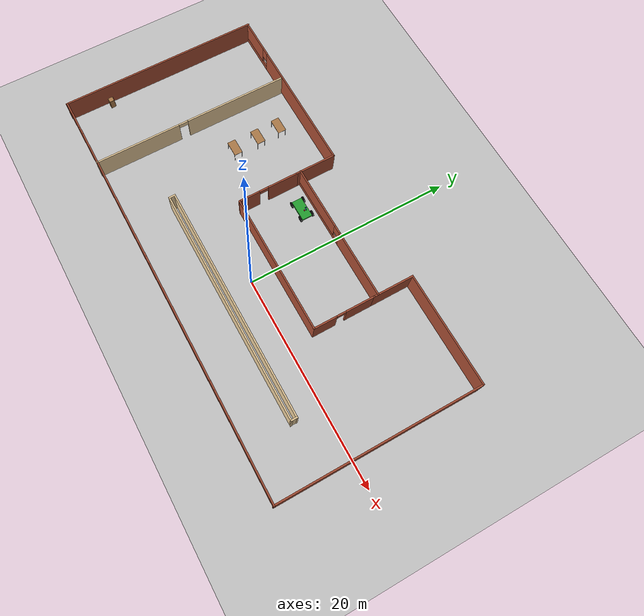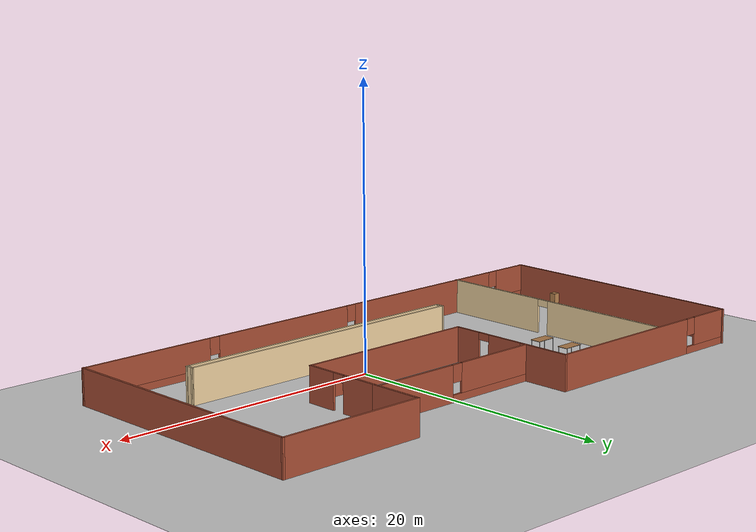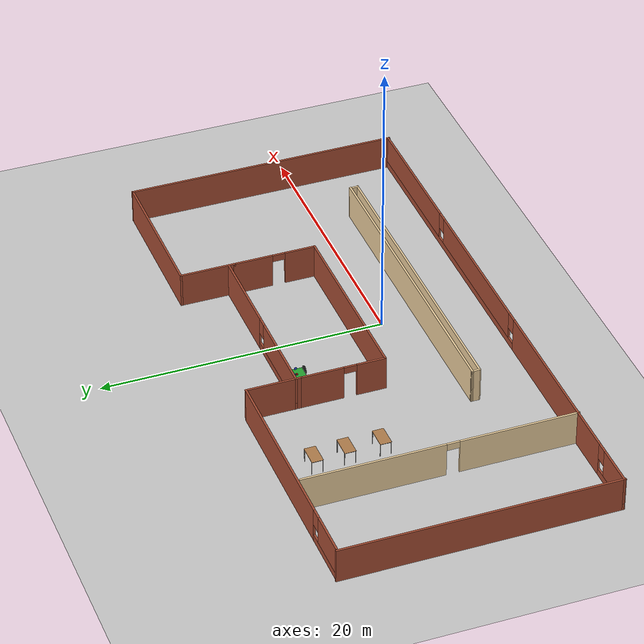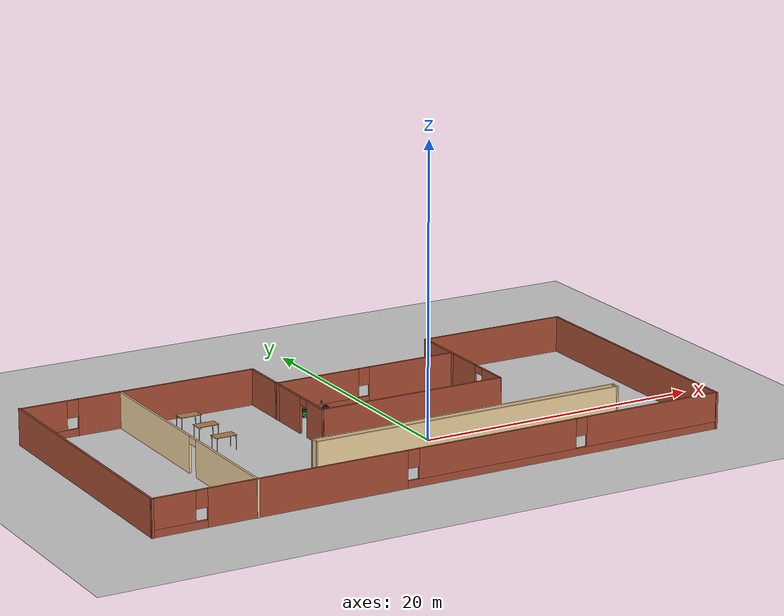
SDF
<sdf version="1.6">
 <world name="default">
  <model name="ground_plane">
   <static>1</static>
   <link name="link">
    <collision name="collision">
     <geometry><plane><normal>0 0 1</normal><size>100 100</size></plane></geometry>
     <surface>
      <contact><collide_bitmask>65535</collide_bitmask></contact>
      <friction><ode><mu>100</mu><mu2>50</mu2></ode></friction>
     </surface>
    </collision>
    <visual name="visual">
     <cast_shadows>0</cast_shadows>
     <geometry><plane><normal>0 0 1</normal><size>100 100</size></plane></geometry>
     <material>
      <script><uri>file://media/materials/scripts/gazebo.material</uri><name>Gazebo/Grey</name></script>
     </material>
    </visual>
   </link>
  </model>
  <model name="world">
   <pose>-2.9063 2.36558 0 0 -0 0</pose>
   <link name="Wall_0">
    <pose>-13.2644 -0.09855 0 0 0 -1.5708</pose>
    <visual name="Wall_0_Visual_0">
     <pose>-4.63352 0 1.25 0 -0 0</pose>
     <geometry><box><size>9.98296 0.15 2.5</size></box></geometry>
     <material>
      <script><uri>file://media/materials/scripts/gazebo.material</uri><name>Gazebo/Grey</name></script>
      <ambient>0.921569 0.807843 0.615686 1</ambient>
     </material>
     <meta><layer>0</layer></meta>
    </visual>
    <collision name="Wall_0_Collision_0">
     <geometry><box><size>9.98296 0.15 2.5</size></box></geometry>
     <pose>-4.63352 0 1.25 0 -0 0</pose>
    </collision>
    <visual name="Wall_0_Visual_1">
     <pose>5.44148 0 1.25 0 -0 0</pose>
     <geometry><box><size>8.36704 0.15 2.5</size></box></geometry>
     <material>
      <script><uri>file://media/materials/scripts/gazebo.material</uri><name>Gazebo/Grey</name></script>
      <ambient>0.921569 0.807843 0.615686 1</ambient>
     </material>
     <meta><layer>0</layer></meta>
    </visual>
    <collision name="Wall_0_Collision_1">
     <geometry><box><size>8.36704 0.15 2.5</size></box></geometry>
     <pose>5.44148 0 1.25 0 -0 0</pose>
    </collision>
    <visual name="Wall_0_Visual_2">
     <pose>0.807957 0 2.25 0 -0 0</pose>
     <geometry><box><size>0.9 0.15 0.5</size></box></geometry>
     <material>
      <script><uri>file://media/materials/scripts/gazebo.material</uri><name>Gazebo/Grey</name></script>
      <ambient>0.921569 0.807843 0.615686 1</ambient>
     </material>
     <meta><layer>0</layer></meta>
    </visual>
    <collision name="Wall_0_Collision_2">
     <geometry><box><size>0.9 0.15 0.5</size></box></geometry>
     <pose>0.807957 0 2.25 0 -0 0</pose>
    </collision>
   </link>
   <link name="Wall_1">
    <pose>3.54984 -9.62225 0 0 0 -0.001564</pose>
    <visual name="Wall_1_Visual_0">
     <pose>-11.619 0 1.25 0 -0 0</pose>
     <geometry><box><size>10.5411 0.15 2.5</size></box></geometry>
     <material>
      <script><uri>file://media/materials/scripts/gazebo.material</uri><name>Gazebo/Bricks</name></script>
      <ambient>1 1 1 1</ambient>
     </material>
     <meta><layer>0</layer></meta>
    </visual>
    <collision name="Wall_1_Collision_0">
     <geometry><box><size>10.5411 0.15 2.5</size></box></geometry>
     <pose>-11.619 0 1.25 0 -0 0</pose>
    </collision>
    <visual name="Wall_1_Visual_1">
     <pose>5.27055 0 0.25 0 -0 0</pose>
     <geometry><box><size>23.238 0.15 0.5</size></box></geometry>
     <material>
      <script><uri>file://media/materials/scripts/gazebo.material</uri><name>Gazebo/Bricks</name></script>
      <ambient>1 1 1 1</ambient>
     </material>
     <meta><layer>0</layer></meta>
    </visual>
    <collision name="Wall_1_Collision_1">
     <geometry><box><size>23.238 0.15 0.5</size></box></geometry>
     <pose>5.27055 0 0.25 0 -0 0</pose>
    </collision>
    <visual name="Wall_1_Visual_2">
     <pose>0.223423 0 1.5 0 -0 0</pose>
     <geometry><box><size>11.5437 0.15 2</size></box></geometry>
     <material>
      <script><uri>file://media/materials/scripts/gazebo.material</uri><name>Gazebo/Bricks</name></script>
      <ambient>1 1 1 1</ambient>
     </material>
     <meta><layer>0</layer></meta>
    </visual>
    <collision name="Wall_1_Collision_2">
     <geometry><box><size>11.5437 0.15 2</size></box></geometry>
     <pose>0.223423 0 1.5 0 -0 0</pose>
    </collision>
    <visual name="Wall_1_Visual_3">
     <pose>11.8424 0 1.5 0 -0 0</pose>
     <geometry><box><size>10.0943 0.15 2</size></box></geometry>
     <material>
      <script><uri>file://media/materials/scripts/gazebo.material</uri><name>Gazebo/Bricks</name></script>
      <ambient>1 1 1 1</ambient>
     </material>
     <meta><layer>0</layer></meta>
    </visual>
    <collision name="Wall_1_Collision_3">
     <geometry><box><size>10.0943 0.15 2</size></box></geometry>
     <pose>11.8424 0 1.5 0 -0 0</pose>
    </collision>
    <visual name="Wall_1_Visual_4">
     <pose>-5.94842 0 1.9 0 -0 0</pose>
     <geometry><box><size>0.8 0.15 1.2</size></box></geometry>
     <material>
      <script><uri>file://media/materials/scripts/gazebo.material</uri><name>Gazebo/Bricks</name></script>
      <ambient>1 1 1 1</ambient>
     </material>
     <meta><layer>0</layer></meta>
    </visual>
    <collision name="Wall_1_Collision_4">
     <geometry><box><size>0.8 0.15 1.2</size></box></geometry>
     <pose>-5.94842 0 1.9 0 -0 0</pose>
    </collision>
    <visual name="Wall_1_Visual_5">
     <pose>6.39527 0 1.9 0 -0 0</pose>
     <geometry><box><size>0.8 0.15 1.2</size></box></geometry>
     <material>
      <script><uri>file://media/materials/scripts/gazebo.material</uri><name>Gazebo/Bricks</name></script>
      <ambient>1 1 1 1</ambient>
     </material>
     <meta><layer>0</layer></meta>
    </visual>
    <collision name="Wall_1_Collision_5">
     <geometry><box><size>0.8 0.15 1.2</size></box></geometry>
     <pose>6.39527 0 1.9 0 -0 0</pose>
    </collision>
   </link>
   <link name="Wall_14">
    <collision name="Wall_14_Collision">
     <geometry><box><size>22.5 0.15 2.5</size></box></geometry>
     <pose>0 0 1.25 0 -0 0</pose>
    </collision>
    <visual name="Wall_14_Visual">
     <pose>0 0 1.25 0 -0 0</pose>
     <geometry><box><size>22.5 0.15 2.5</size></box></geometry>
     <material>
      <script><uri>file://media/materials/scripts/gazebo.material</uri><name>Gazebo/Grey</name></script>
      <ambient>0.921569 0.807843 0.615686 1</ambient>
     </material>
     <meta><layer>0</layer></meta>
    </visual>
    <pose>4.28831 -5.3934 0 0 -0 3.14159</pose>
   </link>
   <link name="Wall_2">
    <collision name="Wall_2_Collision">
     <geometry><box><size>19.5 0.15 2.5</size></box></geometry>
     <pose>0 0 1.25 0 -0 0</pose>
    </collision>
    <visual name="Wall_2_Visual">
     <pose>0 0 1.25 0 -0 0</pose>
     <geometry><box><size>19.5 0.15 2.5</size></box></geometry>
     <material>
      <script><uri>file://media/materials/scripts/gazebo.material</uri><name>Gazebo/Bricks</name></script>
      <ambient>1 1 1 1</ambient>
     </material>
     <meta><layer>0</layer></meta>
    </visual>
    <pose>20.364 -0.02645 0 0 -0 1.5708</pose>
   </link>
   <link name="Wall_43">
    <pose>-16.8144 -9.59595 0 0 -0 3.14159</pose>
    <visual name="Wall_43_Visual_0">
     <pose>-1.88926 0 1.25 0 -0 0</pose>
     <geometry><box><size>3.47166 0.15 2.5</size></box></geometry>
     <material>
      <script><uri>file://media/materials/scripts/gazebo.material</uri><name>Gazebo/Bricks</name></script>
      <ambient>1 1 1 1</ambient>
     </material>
     <meta><layer>0</layer></meta>
    </visual>
    <collision name="Wall_43_Collision_0">
     <geometry><box><size>3.47166 0.15 2.5</size></box></geometry>
     <pose>-1.88926 0 1.25 0 -0 0</pose>
    </collision>
    <visual name="Wall_43_Visual_1">
     <pose>1.73583 0 0.25 0 -0 0</pose>
     <geometry><box><size>3.77853 0.15 0.5</size></box></geometry>
     <material>
      <script><uri>file://media/materials/scripts/gazebo.material</uri><name>Gazebo/Bricks</name></script>
      <ambient>1 1 1 1</ambient>
     </material>
     <meta><layer>0</layer></meta>
    </visual>
    <collision name="Wall_43_Collision_1">
     <geometry><box><size>3.77853 0.15 0.5</size></box></geometry>
     <pose>1.73583 0 0.25 0 -0 0</pose>
    </collision>
    <visual name="Wall_43_Visual_2">
     <pose>2.13583 0 1.5 0 -0 0</pose>
     <geometry><box><size>2.97853 0.15 2</size></box></geometry>
     <material>
      <script><uri>file://media/materials/scripts/gazebo.material</uri><name>Gazebo/Bricks</name></script>
      <ambient>1 1 1 1</ambient>
     </material>
     <meta><layer>0</layer></meta>
    </visual>
    <collision name="Wall_43_Collision_2">
     <geometry><box><size>2.97853 0.15 2</size></box></geometry>
     <pose>2.13583 0 1.5 0 -0 0</pose>
    </collision>
    <visual name="Wall_43_Visual_3">
     <pose>0.246567 0 1.9 0 -0 0</pose>
     <geometry><box><size>0.8 0.15 1.2</size></box></geometry>
     <material>
      <script><uri>file://media/materials/scripts/gazebo.material</uri><name>Gazebo/Bricks</name></script>
      <ambient>1 1 1 1</ambient>
     </material>
     <meta><layer>0</layer></meta>
    </visual>
    <collision name="Wall_43_Collision_3">
     <geometry><box><size>0.8 0.15 1.2</size></box></geometry>
     <pose>0.246567 0 1.9 0 -0 0</pose>
    </collision>
   </link>
   <link name="Wall_44">
    <collision name="Wall_44_Collision">
     <geometry><box><size>19.5 0.15 2.5</size></box></geometry>
     <pose>0 0 1.25 0 -0 0</pose>
    </collision>
    <visual name="Wall_44_Visual">
     <pose>0 0 1.25 0 -0 0</pose>
     <geometry><box><size>19.5 0.15 2.5</size></box></geometry>
     <material>
      <script><uri>file://media/materials/scripts/gazebo.material</uri><name>Gazebo/Bricks</name></script>
      <ambient>1 1 1 1</ambient>
     </material>
     <meta><layer>0</layer></meta>
    </visual>
    <pose>-20.3644 0.02645 0 0 -0 1.5708</pose>
   </link>
   <link name="Wall_49">
    <collision name="Wall_49_Collision">
     <geometry><box><size>0.669425 0.15 2.5</size></box></geometry>
     <pose>0 0 1.25 0 -0 0</pose>
    </collision>
    <visual name="Wall_49_Visual">
     <pose>0 0 1.25 0 -0 0</pose>
     <geometry><box><size>0.669425 0.15 2.5</size></box></geometry>
     <material>
      <script><uri>file://media/materials/scripts/gazebo.material</uri><name>Gazebo/Grey</name></script>
      <ambient>0.921569 0.807843 0.615686 1</ambient>
     </material>
     <meta><layer>0</layer></meta>
    </visual>
    <pose>-6.88893 -5.1337 0 0 -0 1.57943</pose>
   </link>
   <link name="Wall_50">
    <collision name="Wall_50_Collision">
     <geometry><box><size>22.5 0.15 2.5</size></box></geometry>
     <pose>0 0 1.25 0 -0 0</pose>
    </collision>
    <visual name="Wall_50_Visual">
     <pose>0 0 1.25 0 -0 0</pose>
     <geometry><box><size>22.5 0.15 2.5</size></box></geometry>
     <material>
      <script><uri>file://media/materials/scripts/gazebo.material</uri><name>Gazebo/Grey</name></script>
      <ambient>0.921569 0.807843 0.615686 1</ambient>
     </material>
     <meta><layer>0</layer></meta>
    </visual>
    <pose>4.28383 -4.87399 0 0 -0 0</pose>
   </link>
   <link name="Wall_51">
    <collision name="Wall_51_Collision">
     <geometry><box><size>0.669425 0.15 2.5</size></box></geometry>
     <pose>0 0 1.25 0 -0 0</pose>
    </collision>
    <visual name="Wall_51_Visual">
     <pose>0 0 1.25 0 -0 0</pose>
     <geometry><box><size>0.669425 0.15 2.5</size></box></geometry>
     <material>
      <script><uri>file://media/materials/scripts/gazebo.material</uri><name>Gazebo/Grey</name></script>
      <ambient>0.921569 0.807843 0.615686 1</ambient>
     </material>
     <meta><layer>0</layer></meta>
    </visual>
    <pose>15.431 -5.1337 0 0 0 -1.56216</pose>
   </link>
   <link name="Wall_57">
    <collision name="Wall_57_Collision">
     <geometry><box><size>10.75 0.15 2.5</size></box></geometry>
     <pose>0 0 1.25 0 -0 0</pose>
    </collision>
    <visual name="Wall_57_Visual">
     <pose>0 0 1.25 0 -0 0</pose>
     <geometry><box><size>10.75 0.15 2.5</size></box></geometry>
     <material>
      <script><uri>file://media/materials/scripts/gazebo.material</uri><name>Gazebo/Bricks</name></script>
      <ambient>1 1 1 1</ambient>
     </material>
     <meta><layer>0</layer></meta>
    </visual>
    <pose>15.064 9.64855 0 0 -0 3.14159</pose>
   </link>
   <link name="Wall_60">
    <collision name="Wall_60_Collision">
     <geometry><box><size>4 0.15 2.5</size></box></geometry>
     <pose>0 0 1.25 0 -0 0</pose>
    </collision>
    <visual name="Wall_60_Visual">
     <pose>0 0 1.25 0 -0 0</pose>
     <geometry><box><size>4 0.15 2.5</size></box></geometry>
     <material>
      <script><uri>file://media/materials/scripts/gazebo.material</uri><name>Gazebo/Bricks</name></script>
      <ambient>0.921569 0.807843 0.615686 1</ambient>
     </material>
     <meta><layer>0</layer></meta>
    </visual>
    <pose>9.76404 7.72355 0 0 0 -1.5708</pose>
   </link>
   <link name="Wall_62">
    <collision name="Wall_62_Collision">
     <geometry><box><size>4 0.15 2.5</size></box></geometry>
     <pose>0 0 1.25 0 -0 0</pose>
    </collision>
    <visual name="Wall_62_Visual">
     <pose>0 0 1.25 0 -0 0</pose>
     <geometry><box><size>4 0.15 2.5</size></box></geometry>
     <material>
      <script><uri>file://media/materials/scripts/gazebo.material</uri><name>Gazebo/Bricks</name></script>
      <ambient>1 1 1 1</ambient>
     </material>
     <meta><layer>0</layer></meta>
    </visual>
    <pose>-3.58596 7.72355 0 0 -0 1.5708</pose>
   </link>
   <link name="Wall_63">
    <pose>-11.886 9.64855 0 0 -0 3.14159</pose>
    <visual name="Wall_63_Visual_0">
     <pose>-1.97263 0 1.25 0 -0 0</pose>
     <geometry><box><size>12.8047 0.15 2.5</size></box></geometry>
     <material>
      <script><uri>file://media/materials/scripts/gazebo.material</uri><name>Gazebo/Bricks</name></script>
      <ambient>1 1 1 1</ambient>
     </material>
     <meta><layer>0</layer></meta>
    </visual>
    <collision name="Wall_63_Collision_0">
     <geometry><box><size>12.8047 0.15 2.5</size></box></geometry>
     <pose>-1.97263 0 1.25 0 -0 0</pose>
    </collision>
    <visual name="Wall_63_Visual_1">
     <pose>6.40237 0 0.25 0 -0 0</pose>
     <geometry><box><size>3.94526 0.15 0.5</size></box></geometry>
     <material>
      <script><uri>file://media/materials/scripts/gazebo.material</uri><name>Gazebo/Bricks</name></script>
      <ambient>1 1 1 1</ambient>
     </material>
     <meta><layer>0</layer></meta>
    </visual>
    <collision name="Wall_63_Collision_1">
     <geometry><box><size>3.94526 0.15 0.5</size></box></geometry>
     <pose>6.40237 0 0.25 0 -0 0</pose>
    </collision>
    <visual name="Wall_63_Visual_2">
     <pose>6.80237 0 1.5 0 -0 0</pose>
     <geometry><box><size>3.14526 0.15 2</size></box></geometry>
     <material>
      <script><uri>file://media/materials/scripts/gazebo.material</uri><name>Gazebo/Bricks</name></script>
      <ambient>1 1 1 1</ambient>
     </material>
     <meta><layer>0</layer></meta>
    </visual>
    <collision name="Wall_63_Collision_2">
     <geometry><box><size>3.14526 0.15 2</size></box></geometry>
     <pose>6.80237 0 1.5 0 -0 0</pose>
    </collision>
    <visual name="Wall_63_Visual_3">
     <pose>4.82974 0 1.9 0 -0 0</pose>
     <geometry><box><size>0.8 0.15 1.2</size></box></geometry>
     <material>
      <script><uri>file://media/materials/scripts/gazebo.material</uri><name>Gazebo/Bricks</name></script>
      <ambient>1 1 1 1</ambient>
     </material>
     <meta><layer>0</layer></meta>
    </visual>
    <collision name="Wall_63_Collision_3">
     <geometry><box><size>0.8 0.15 1.2</size></box></geometry>
     <pose>4.82974 0 1.9 0 -0 0</pose>
    </collision>
   </link>
   <link name="Wall_65">
    <pose>-3.58596 2.87355 0 0 0 -1.5708</pose>
    <visual name="Wall_65_Visual_0">
     <pose>-1.49594 0 1.25 0 -0 0</pose>
     <geometry><box><size>3.00811 0.15 2.5</size></box></geometry>
     <material>
      <script><uri>file://media/materials/scripts/gazebo.material</uri><name>Gazebo/Bricks</name></script>
      <ambient>0.921569 0.807843 0.615686 1</ambient>
     </material>
     <meta><layer>0</layer></meta>
    </visual>
    <collision name="Wall_65_Collision_0">
     <geometry><box><size>3.00811 0.15 2.5</size></box></geometry>
     <pose>-1.49594 0 1.25 0 -0 0</pose>
    </collision>
    <visual name="Wall_65_Visual_1">
     <pose>1.95406 0 1.25 0 -0 0</pose>
     <geometry><box><size>2.09189 0.15 2.5</size></box></geometry>
     <material>
      <script><uri>file://media/materials/scripts/gazebo.material</uri><name>Gazebo/Bricks</name></script>
      <ambient>0.921569 0.807843 0.615686 1</ambient>
     </material>
     <meta><layer>0</layer></meta>
    </visual>
    <collision name="Wall_65_Collision_1">
     <geometry><box><size>2.09189 0.15 2.5</size></box></geometry>
     <pose>1.95406 0 1.25 0 -0 0</pose>
    </collision>
    <visual name="Wall_65_Visual_2">
     <pose>0.458113 0 2.25 0 -0 0</pose>
     <geometry><box><size>0.9 0.15 0.5</size></box></geometry>
     <material>
      <script><uri>file://media/materials/scripts/gazebo.material</uri><name>Gazebo/Bricks</name></script>
      <ambient>0.921569 0.807843 0.615686 1</ambient>
     </material>
     <meta><layer>0</layer></meta>
    </visual>
    <collision name="Wall_65_Collision_2">
     <geometry><box><size>0.9 0.15 0.5</size></box></geometry>
     <pose>0.458113 0 2.25 0 -0 0</pose>
    </collision>
   </link>
   <link name="Wall_66">
    <collision name="Wall_66_Collision">
     <geometry><box><size>13.5 0.15 2.5</size></box></geometry>
     <pose>0 0 1.25 0 -0 0</pose>
    </collision>
    <visual name="Wall_66_Visual">
     <pose>0 0 1.25 0 -0 0</pose>
     <geometry><box><size>13.5 0.15 2.5</size></box></geometry>
     <material>
      <script><uri>file://media/materials/scripts/gazebo.material</uri><name>Gazebo/Bricks</name></script>
      <ambient>0.921569 0.807843 0.615686 1</ambient>
     </material>
     <meta><layer>0</layer></meta>
    </visual>
    <pose>3.08904 -0.05145 0 0 -0 0</pose>
   </link>
   <link name="Wall_67">
    <pose>9.76404 2.87355 0 0 -0 1.5708</pose>
    <visual name="Wall_67_Visual_0">
     <pose>-1.86332 0 1.25 0 -0 0</pose>
     <geometry><box><size>2.27336 0.15 2.5</size></box></geometry>
     <material>
      <script><uri>file://media/materials/scripts/gazebo.material</uri><name>Gazebo/Bricks</name></script>
      <ambient>0.921569 0.807843 0.615686 1</ambient>
     </material>
     <meta><layer>0</layer></meta>
    </visual>
    <collision name="Wall_67_Collision_0">
     <geometry><box><size>2.27336 0.15 2.5</size></box></geometry>
     <pose>-1.86332 0 1.25 0 -0 0</pose>
    </collision>
    <visual name="Wall_67_Visual_1">
     <pose>1.58668 0 1.25 0 -0 0</pose>
     <geometry><box><size>2.82664 0.15 2.5</size></box></geometry>
     <material>
      <script><uri>file://media/materials/scripts/gazebo.material</uri><name>Gazebo/Bricks</name></script>
      <ambient>0.921569 0.807843 0.615686 1</ambient>
     </material>
     <meta><layer>0</layer></meta>
    </visual>
    <collision name="Wall_67_Collision_1">
     <geometry><box><size>2.82664 0.15 2.5</size></box></geometry>
     <pose>1.58668 0 1.25 0 -0 0</pose>
    </collision>
    <visual name="Wall_67_Visual_2">
     <pose>-0.276639 0 2.25 0 -0 0</pose>
     <geometry><box><size>0.9 0.15 0.5</size></box></geometry>
     <material>
      <script><uri>file://media/materials/scripts/gazebo.material</uri><name>Gazebo/Bricks</name></script>
      <ambient>0.921569 0.807843 0.615686 1</ambient>
     </material>
     <meta><layer>0</layer></meta>
    </visual>
    <collision name="Wall_67_Collision_2">
     <geometry><box><size>0.9 0.15 0.5</size></box></geometry>
     <pose>-0.276639 0 2.25 0 -0 0</pose>
    </collision>
   </link>
   <link name="Wall_69">
    <pose>3.07794 6.20106 0 0 -0 3.14159</pose>
    <visual name="Wall_69_Visual_0">
     <pose>-3.50821 0 1.25 0 -0 0</pose>
     <geometry><box><size>6.48358 0.15 2.5</size></box></geometry>
     <material>
      <script><uri>file://media/materials/scripts/gazebo.material</uri><name>Gazebo/Bricks</name></script>
      <ambient>1 1 1 1</ambient>
     </material>
     <meta><layer>0</layer></meta>
    </visual>
    <collision name="Wall_69_Collision_0">
     <geometry><box><size>6.48358 0.15 2.5</size></box></geometry>
     <pose>-3.50821 0 1.25 0 -0 0</pose>
    </collision>
    <visual name="Wall_69_Visual_1">
     <pose>3.24179 0 0.25 0 -0 0</pose>
     <geometry><box><size>7.01642 0.15 0.5</size></box></geometry>
     <material>
      <script><uri>file://media/materials/scripts/gazebo.material</uri><name>Gazebo/Bricks</name></script>
      <ambient>1 1 1 1</ambient>
     </material>
     <meta><layer>0</layer></meta>
    </visual>
    <collision name="Wall_69_Collision_1">
     <geometry><box><size>7.01642 0.15 0.5</size></box></geometry>
     <pose>3.24179 0 0.25 0 -0 0</pose>
    </collision>
    <visual name="Wall_69_Visual_2">
     <pose>3.64179 0 1.5 0 -0 0</pose>
     <geometry><box><size>6.21642 0.15 2</size></box></geometry>
     <material>
      <script><uri>file://media/materials/scripts/gazebo.material</uri><name>Gazebo/Bricks</name></script>
      <ambient>1 1 1 1</ambient>
     </material>
     <meta><layer>0</layer></meta>
    </visual>
    <collision name="Wall_69_Collision_2">
     <geometry><box><size>6.21642 0.15 2</size></box></geometry>
     <pose>3.64179 0 1.5 0 -0 0</pose>
    </collision>
    <visual name="Wall_69_Visual_3">
     <pose>0.133582 0 1.9 0 -0 0</pose>
     <geometry><box><size>0.8 0.15 1.2</size></box></geometry>
     <material>
      <script><uri>file://media/materials/scripts/gazebo.material</uri><name>Gazebo/Bricks</name></script>
      <ambient>1 1 1 1</ambient>
     </material>
     <meta><layer>0</layer></meta>
    </visual>
    <collision name="Wall_69_Collision_3">
     <geometry><box><size>0.8 0.15 1.2</size></box></geometry>
     <pose>0.133582 0 1.9 0 -0 0</pose>
    </collision>
   </link>
   <static>1</static>
  </model>
  <model name="table_2">
   <static>1</static>
   <link name="link">
    <collision name="surface">
     <pose>0 0 1 0 -0 0</pose>
     <geometry><box><size>1.5 0.8 0.03</size></box></geometry>
     <surface><friction><ode><mu>0.6</mu><mu2>0.6</mu2></ode></friction></surface>
    </collision>
    <visual name="visual1">
     <pose>0 0 1 0 -0 0</pose>
     <geometry><box><size>1.5 0.8 0.03</size></box></geometry>
     <material>
      <script><uri>file://media/materials/scripts/gazebo.material</uri><name>Gazebo/Wood</name></script>
     </material>
    </visual>
    <collision name="front_left_leg">
     <pose>0.68 0.38 0.5 0 -0 0</pose>
     <geometry><cylinder><radius>0.02</radius><length>1</length></cylinder></geometry>
    </collision>
    <visual name="front_left_leg">
     <pose>0.68 0.38 0.5 0 -0 0</pose>
     <geometry><cylinder><radius>0.02</radius><length>1</length></cylinder></geometry>
     <material>
      <script><uri>file://media/materials/scripts/gazebo.material</uri><name>Gazebo/Grey</name></script>
     </material>
    </visual>
    <collision name="front_right_leg">
     <pose>0.68 -0.38 0.5 0 -0 0</pose>
     <geometry><cylinder><radius>0.02</radius><length>1</length></cylinder></geometry>
    </collision>
    <visual name="front_right_leg">
     <pose>0.68 -0.38 0.5 0 -0 0</pose>
     <geometry><cylinder><radius>0.02</radius><length>1</length></cylinder></geometry>
     <material>
      <script><uri>file://media/materials/scripts/gazebo.material</uri><name>Gazebo/Grey</name></script>
     </material>
    </visual>
    <collision name="back_right_leg">
     <pose>-0.68 -0.38 0.5 0 -0 0</pose>
     <geometry><cylinder><radius>0.02</radius><length>1</length></cylinder></geometry>
    </collision>
    <visual name="back_right_leg">
     <pose>-0.68 -0.38 0.5 0 -0 0</pose>
     <geometry><cylinder><radius>0.02</radius><length>1</length></cylinder></geometry>
     <material>
      <script><uri>file://media/materials/scripts/gazebo.material</uri><name>Gazebo/Grey</name></script>
     </material>
    </visual>
    <collision name="back_left_leg">
     <pose>-0.68 0.38 0.5 0 -0 0</pose>
     <geometry><cylinder><radius>0.02</radius><length>1</length></cylinder></geometry>
    </collision>
    <visual name="back_left_leg">
     <pose>-0.68 0.38 0.5 0 -0 0</pose>
     <geometry><cylinder><radius>0.02</radius><length>1</length></cylinder></geometry>
     <material>
      <script><uri>file://media/materials/scripts/gazebo.material</uri><name>Gazebo/Grey</name></script>
     </material>
    </visual>
   </link>
   <pose>-12.4771 9.55834 0 0 -0 0</pose>
  </model>
  <model name="table_3">
   <static>1</static>
   <link name="link">
    <collision name="surface">
     <pose>0 0 1 0 -0 0</pose>
     <geometry><box><size>1.5 0.8 0.03</size></box></geometry>
     <surface><friction><ode><mu>0.6</mu><mu2>0.6</mu2></ode></friction></surface>
    </collision>
    <visual name="visual1">
     <pose>0 0 1 0 -0 0</pose>
     <geometry><box><size>1.5 0.8 0.03</size></box></geometry>
     <material>
      <script><uri>file://media/materials/scripts/gazebo.material</uri><name>Gazebo/Wood</name></script>
     </material>
    </visual>
    <collision name="front_left_leg">
     <pose>0.68 0.38 0.5 0 -0 0</pose>
     <geometry><cylinder><radius>0.02</radius><length>1</length></cylinder></geometry>
    </collision>
    <visual name="front_left_leg">
     <pose>0.68 0.38 0.5 0 -0 0</pose>
     <geometry><cylinder><radius>0.02</radius><length>1</length></cylinder></geometry>
     <material>
      <script><uri>file://media/materials/scripts/gazebo.material</uri><name>Gazebo/Grey</name></script>
     </material>
    </visual>
    <collision name="front_right_leg">
     <pose>0.68 -0.38 0.5 0 -0 0</pose>
     <geometry><cylinder><radius>0.02</radius><length>1</length></cylinder></geometry>
    </collision>
    <visual name="front_right_leg">
     <pose>0.68 -0.38 0.5 0 -0 0</pose>
     <geometry><cylinder><radius>0.02</radius><length>1</length></cylinder></geometry>
     <material>
      <script><uri>file://media/materials/scripts/gazebo.material</uri><name>Gazebo/Grey</name></script>
     </material>
    </visual>
    <collision name="back_right_leg">
     <pose>-0.68 -0.38 0.5 0 -0 0</pose>
     <geometry><cylinder><radius>0.02</radius><length>1</length></cylinder></geometry>
    </collision>
    <visual name="back_right_leg">
     <pose>-0.68 -0.38 0.5 0 -0 0</pose>
     <geometry><cylinder><radius>0.02</radius><length>1</length></cylinder></geometry>
     <material>
      <script><uri>file://media/materials/scripts/gazebo.material</uri><name>Gazebo/Grey</name></script>
     </material>
    </visual>
    <collision name="back_left_leg">
     <pose>-0.68 0.38 0.5 0 -0 0</pose>
     <geometry><cylinder><radius>0.02</radius><length>1</length></cylinder></geometry>
    </collision>
    <visual name="back_left_leg">
     <pose>-0.68 0.38 0.5 0 -0 0</pose>
     <geometry><cylinder><radius>0.02</radius><length>1</length></cylinder></geometry>
     <material>
      <script><uri>file://media/materials/scripts/gazebo.material</uri><name>Gazebo/Grey</name></script>
     </material>
    </visual>
   </link>
   <pose>-12.3643 7.27073 0 0 -0 0</pose>
  </model>
  <model name="table_4">
   <static>1</static>
   <link name="link">
    <collision name="surface">
     <pose>0 0 1 0 -0 0</pose>
     <geometry><box><size>1.5 0.8 0.03</size></box></geometry>
     <surface><friction><ode><mu>0.6</mu><mu2>0.6</mu2></ode></friction></surface>
    </collision>
    <visual name="visual1">
     <pose>0 0 1 0 -0 0</pose>
     <geometry><box><size>1.5 0.8 0.03</size></box></geometry>
     <material>
      <script><uri>file://media/materials/scripts/gazebo.material</uri><name>Gazebo/Wood</name></script>
     </material>
    </visual>
    <collision name="front_left_leg">
     <pose>0.68 0.38 0.5 0 -0 0</pose>
     <geometry><cylinder><radius>0.02</radius><length>1</length></cylinder></geometry>
    </collision>
    <visual name="front_left_leg">
     <pose>0.68 0.38 0.5 0 -0 0</pose>
     <geometry><cylinder><radius>0.02</radius><length>1</length></cylinder></geometry>
     <material>
      <script><uri>file://media/materials/scripts/gazebo.material</uri><name>Gazebo/Grey</name></script>
     </material>
    </visual>
    <collision name="front_right_leg">
     <pose>0.68 -0.38 0.5 0 -0 0</pose>
     <geometry><cylinder><radius>0.02</radius><length>1</length></cylinder></geometry>
    </collision>
    <visual name="front_right_leg">
     <pose>0.68 -0.38 0.5 0 -0 0</pose>
     <geometry><cylinder><radius>0.02</radius><length>1</length></cylinder></geometry>
     <material>
      <script><uri>file://media/materials/scripts/gazebo.material</uri><name>Gazebo/Grey</name></script>
     </material>
    </visual>
    <collision name="back_right_leg">
     <pose>-0.68 -0.38 0.5 0 -0 0</pose>
     <geometry><cylinder><radius>0.02</radius><length>1</length></cylinder></geometry>
    </collision>
    <visual name="back_right_leg">
     <pose>-0.68 -0.38 0.5 0 -0 0</pose>
     <geometry><cylinder><radius>0.02</radius><length>1</length></cylinder></geometry>
     <material>
      <script><uri>file://media/materials/scripts/gazebo.material</uri><name>Gazebo/Grey</name></script>
     </material>
    </visual>
    <collision name="back_left_leg">
     <pose>-0.68 0.38 0.5 0 -0 0</pose>
     <geometry><cylinder><radius>0.02</radius><length>1</length></cylinder></geometry>
    </collision>
    <visual name="back_left_leg">
     <pose>-0.68 0.38 0.5 0 -0 0</pose>
     <geometry><cylinder><radius>0.02</radius><length>1</length></cylinder></geometry>
     <material>
      <script><uri>file://media/materials/scripts/gazebo.material</uri><name>Gazebo/Grey</name></script>
     </material>
    </visual>
   </link>
   <pose>-12.3276 4.80879 0 0 -0 0</pose>
  </model>
  <model name="cabinet">
   <static>1</static>
   <link name="cabinet_bottom_plate">
    <inertial>
     <pose>0 0 -1 0 -0 0</pose>
     <inertia><ixx>2.05</ixx><ixy>0</ixy><ixz>0</ixz><iyy>2.05</iyy><iyz>0</iyz><izz>2.05</izz></inertia>
     <mass>25</mass>
    </inertial>
    <collision name="cabinet_bottom_plate_geom">
     <pose>0 0 0.01 0 -0 0</pose>
     <geometry><box><size>0.45 0.45 0.02</size></box></geometry>
    </collision>
    <visual name="cabinet_bottom_plate_geom_visual">
     <pose>0 0 0.01 0 -0 0</pose>
     <geometry><box><size>0.45 0.45 0.02</size></box></geometry>
     <material>
      <script><uri>file://media/materials/scripts/gazebo.material</uri><name>Gazebo/Wood</name></script>
     </material>
    </visual>
    <collision name="cabinet_bottom_plate_geom_cabinet_back_plate">
     <pose>0.235 0 0.51 0 -0 0</pose>
     <geometry><box><size>0.02 0.45 1.02</size></box></geometry>
    </collision>
    <visual name="cabinet_bottom_plate_geom_cabinet_back_plate_visual">
     <pose>0.235 0 0.51 0 -0 0</pose>
     <geometry><box><size>0.02 0.45 1.02</size></box></geometry>
     <material>
      <script><uri>file://media/materials/scripts/gazebo.material</uri><name>Gazebo/Wood</name></script>
     </material>
    </visual>
    <collision name="cabinet_bottom_plate_geom_cabinet_left_plate">
     <pose>0 0.235 0.51 0 -0 0</pose>
     <geometry><box><size>0.45 0.02 1.02</size></box></geometry>
    </collision>
    <visual name="cabinet_bottom_plate_geom_cabinet_left_plate_visual">
     <pose>0 0.235 0.51 0 -0 0</pose>
     <geometry><box><size>0.45 0.02 1.02</size></box></geometry>
     <material>
      <script><uri>file://media/materials/scripts/gazebo.material</uri><name>Gazebo/Wood</name></script>
     </material>
    </visual>
    <collision name="cabinet_bottom_plate_geom_cabinet_middle_plate">
     <pose>0 0 0.51 0 -0 0</pose>
     <geometry><box><size>0.45 0.45 0.02</size></box></geometry>
    </collision>
    <visual name="cabinet_bottom_plate_geom_cabinet_middle_plate_visual">
     <pose>0 0 0.51 0 -0 0</pose>
     <geometry><box><size>0.45 0.45 0.02</size></box></geometry>
     <material>
      <script><uri>file://media/materials/scripts/gazebo.material</uri><name>Gazebo/Wood</name></script>
     </material>
    </visual>
    <collision name="cabinet_bottom_plate_geom_cabinet_right_plate">
     <pose>0 -0.235 0.51 0 -0 0</pose>
     <geometry><box><size>0.45 0.02 1.02</size></box></geometry>
    </collision>
    <visual name="cabinet_bottom_plate_geom_cabinet_right_plate_visual">
     <pose>0 -0.235 0.51 0 -0 0</pose>
     <geometry><box><size>0.45 0.02 1.02</size></box></geometry>
     <material>
      <script><uri>file://media/materials/scripts/gazebo.material</uri><name>Gazebo/Wood</name></script>
     </material>
    </visual>
    <collision name="cabinet_bottom_plate_geom_cabinet_top_plate">
     <pose>0 0 1.01 0 -0 0</pose>
     <geometry><box><size>0.45 0.45 0.02</size></box></geometry>
    </collision>
    <visual name="cabinet_bottom_plate_geom_cabinet_top_plate_visual">
     <pose>0 0 1.01 0 -0 0</pose>
     <geometry><box><size>0.45 0.45 0.02</size></box></geometry>
     <material>
      <script><uri>file://media/materials/scripts/gazebo.material</uri><name>Gazebo/Wood</name></script>
     </material>
    </visual>
   </link>
   <pose>-22.7767 -3.278 0 0 -0 0</pose>
  </model>
  <model name="car">
   <link name="chassis">
    <pose>0 0 0.3 0 -0 0</pose>
    <collision name="collision"><geometry><box><size>2 1 0.2</size></box></geometry></collision>
    <visual name="visual">
     <geometry><box><size>2 1 0.2</size></box></geometry>
     <material>
      <script><uri>file://media/materials/scripts/gazebo.material</uri><name>Gazebo/Green</name></script>
     </material>
    </visual>
    <inertial>
     <inertia><ixx>1</ixx><ixy>0</ixy><ixz>0</ixz><iyy>1</iyy><iyz>0</iyz><izz>1</izz></inertia>
     <mass>1</mass>
    </inertial>
   </link>
   <link name="front_left_wheel">
    <pose>0.8 0.6 0.3 -0 1.5707 1.5707</pose>
    <collision name="collision">
     <geometry><cylinder><radius>0.3</radius><length>0.1</length></cylinder></geometry>
    </collision>
    <visual name="visual">
     <geometry><cylinder><radius>0.3</radius><length>0.1</length></cylinder></geometry>
     <material>
      <script><uri>file://media/materials/scripts/gazebo.material</uri><name>Gazebo/Black</name></script>
     </material>
    </visual>
    <inertial>
     <inertia><ixx>1</ixx><ixy>0</ixy><ixz>0</ixz><iyy>1</iyy><iyz>0</iyz><izz>1</izz></inertia>
     <mass>1</mass>
    </inertial>
   </link>
   <link name="front_right_wheel">
    <pose>0.8 -0.6 0.3 -0 1.5707 1.5707</pose>
    <collision name="collision">
     <geometry><cylinder><radius>0.3</radius><length>0.1</length></cylinder></geometry>
    </collision>
    <visual name="visual">
     <geometry><cylinder><radius>0.3</radius><length>0.1</length></cylinder></geometry>
     <material>
      <script><uri>file://media/materials/scripts/gazebo.material</uri><name>Gazebo/Black</name></script>
     </material>
    </visual>
    <inertial>
     <inertia><ixx>1</ixx><ixy>0</ixy><ixz>0</ixz><iyy>1</iyy><iyz>0</iyz><izz>1</izz></inertia>
     <mass>1</mass>
    </inertial>
   </link>
   <link name="back_right_wheel">
    <pose>-0.8 -0.6 0.3 -0 1.5707 1.5707</pose>
    <collision name="collision">
     <geometry><cylinder><radius>0.3</radius><length>0.1</length></cylinder></geometry>
    </collision>
    <visual name="visual">
     <geometry><cylinder><radius>0.3</radius><length>0.1</length></cylinder></geometry>
     <material>
      <script><uri>file://media/materials/scripts/gazebo.material</uri><name>Gazebo/Black</name></script>
     </material>
    </visual>
    <inertial>
     <inertia><ixx>1</ixx><ixy>0</ixy><ixz>0</ixz><iyy>1</iyy><iyz>0</iyz><izz>1</izz></inertia>
     <mass>1</mass>
    </inertial>
   </link>
   <link name="back_left_wheel">
    <pose>-0.8 0.6 0.3 -0 1.5707 1.5707</pose>
    <collision name="collision">
     <geometry><cylinder><radius>0.3</radius><length>0.1</length></cylinder></geometry>
    </collision>
    <visual name="visual">
     <geometry><cylinder><radius>0.3</radius><length>0.1</length></cylinder></geometry>
     <material>
      <script><uri>file://media/materials/scripts/gazebo.material</uri><name>Gazebo/Black</name></script>
     </material>
    </visual>
    <inertial>
     <inertia><ixx>1</ixx><ixy>0</ixy><ixz>0</ixz><iyy>1</iyy><iyz>0</iyz><izz>1</izz></inertia>
     <mass>1</mass>
    </inertial>
   </link>
   <link name="gas_pedal">
    <pose>0.3 0.1 0.5 0 -0 0</pose>
    <collision name="collision"><geometry><box><size>0.1 0.1 0.1</size></box></geometry></collision>
    <visual name="visual">
     <geometry><box><size>0.1 0.1 0.1</size></box></geometry>
     <material>
      <script><uri>file://media/materials/scripts/gazebo.material</uri><name>Gazebo/Red</name></script>
     </material>
    </visual>
    <inertial>
     <inertia><ixx>1</ixx><ixy>0</ixy><ixz>0</ixz><iyy>1</iyy><iyz>0</iyz><izz>1</izz></inertia>
     <mass>1</mass>
    </inertial>
   </link>
   <link name="brake_pedal">
    <pose>0.3 0.25 0.5 0 -0 0</pose>
    <collision name="collision"><geometry><box><size>0.1 0.1 0.1</size></box></geometry></collision>
    <visual name="visual">
     <geometry><box><size>0.1 0.1 0.1</size></box></geometry>
     <material>
      <script><uri>file://media/materials/scripts/gazebo.material</uri><name>Gazebo/Blue</name></script>
     </material>
    </visual>
    <inertial>
     <inertia><ixx>1</ixx><ixy>0</ixy><ixz>0</ixz><iyy>1</iyy><iyz>0</iyz><izz>1</izz></inertia>
     <mass>1</mass>
    </inertial>
   </link>
   <link name="steering_wheel">
    <pose>0.3 0.2 1 0 1.5707 0</pose>
    <collision name="collision">
     <geometry><cylinder><radius>0.1</radius><length>0.01</length></cylinder></geometry>
    </collision>
    <visual name="visual">
     <geometry><cylinder><radius>0.1</radius><length>0.01</length></cylinder></geometry>
     <material>
      <script><uri>file://media/materials/scripts/gazebo.material</uri><name>Gazebo/Blue</name></script>
     </material>
    </visual>
    <inertial>
     <inertia><ixx>1</ixx><ixy>0</ixy><ixz>0</ixz><iyy>1</iyy><iyz>0</iyz><izz>1</izz></inertia>
     <mass>1</mass>
    </inertial>
   </link>
   <joint name="gas_joint" type="prismatic">
    <parent>chassis</parent>
    <child>gas_pedal</child>
    <axis>
     <xyz>1 0 0</xyz>
     <limit><lower>0</lower><upper>0.2</upper></limit>
     <use_parent_model_frame>1</use_parent_model_frame>
     <dynamics><spring_reference>0</spring_reference><spring_stiffness>0</spring_stiffness></dynamics>
    </axis>
   </joint>
   <joint name="brake_joint" type="prismatic">
    <parent>chassis</parent>
    <child>brake_pedal</child>
    <axis>
     <xyz>1 0 0</xyz>
     <limit><lower>0</lower><upper>0.2</upper></limit>
     <use_parent_model_frame>1</use_parent_model_frame>
     <dynamics><spring_reference>0</spring_reference><spring_stiffness>0</spring_stiffness></dynamics>
    </axis>
   </joint>
   <joint name="steering_joint" type="revolute">
    <parent>chassis</parent>
    <child>steering_wheel</child>
    <axis>
     <xyz>1 0 0</xyz>
     <limit><lower>-7.853</lower><upper>7.853</upper></limit>
     <use_parent_model_frame>1</use_parent_model_frame>
     <dynamics><spring_reference>0</spring_reference><spring_stiffness>0</spring_stiffness></dynamics>
    </axis>
   </joint>
   <joint name="front_left_joint" type="revolute2">
    <parent>chassis</parent>
    <child>front_left_wheel</child>
    <axis>
     <xyz>0 0 1</xyz>
     <limit><lower>8.56324e-06</lower><upper>8.56324e-06</upper></limit>
     <use_parent_model_frame>1</use_parent_model_frame>
     <dynamics><spring_reference>0</spring_reference><spring_stiffness>0</spring_stiffness></dynamics>
    </axis>
    <axis2>
     <xyz>0 1 0</xyz>
     <use_parent_model_frame>1</use_parent_model_frame>
     <dynamics><spring_reference>0</spring_reference><spring_stiffness>0</spring_stiffness></dynamics>
    </axis2>
    <physics><ode><limit><cfm>0</cfm><erp>0.9</erp></limit></ode></physics>
   </joint>
   <joint name="front_right_joint" type="revolute2">
    <parent>chassis</parent>
    <child>front_right_wheel</child>
    <axis>
     <xyz>0 0 1</xyz>
     <limit><lower>8.56324e-06</lower><upper>8.56324e-06</upper></limit>
     <use_parent_model_frame>1</use_parent_model_frame>
     <dynamics><spring_reference>0</spring_reference><spring_stiffness>0</spring_stiffness></dynamics>
    </axis>
    <axis2>
     <xyz>0 1 0</xyz>
     <use_parent_model_frame>1</use_parent_model_frame>
     <dynamics><spring_reference>0</spring_reference><spring_stiffness>0</spring_stiffness></dynamics>
    </axis2>
    <physics><ode><limit><cfm>0</cfm><erp>0.9</erp></limit></ode></physics>
   </joint>
   <joint name="back_right_joint" type="revolute2">
    <parent>chassis</parent>
    <child>back_right_wheel</child>
    <axis>
     <xyz>0 0 1</xyz>
     <limit><lower>0</lower><upper>0</upper></limit>
     <use_parent_model_frame>1</use_parent_model_frame>
     <dynamics><spring_reference>0</spring_reference><spring_stiffness>0</spring_stiffness></dynamics>
    </axis>
    <axis2>
     <xyz>0 1 0</xyz>
     <use_parent_model_frame>1</use_parent_model_frame>
     <dynamics><spring_reference>0</spring_reference><spring_stiffness>0</spring_stiffness></dynamics>
    </axis2>
    <physics><ode><limit><cfm>0</cfm><erp>0.9</erp></limit></ode></physics>
   </joint>
   <joint name="back_left_joint" type="revolute2">
    <parent>chassis</parent>
    <child>back_left_wheel</child>
    <axis>
     <xyz>0 0 1</xyz>
     <limit><lower>0</lower><upper>0</upper></limit>
     <use_parent_model_frame>1</use_parent_model_frame>
     <dynamics><spring_reference>0</spring_reference><spring_stiffness>0</spring_stiffness></dynamics>
    </axis>
    <axis2>
     <xyz>0 1 0</xyz>
     <use_parent_model_frame>1</use_parent_model_frame>
     <dynamics><spring_reference>0</spring_reference><spring_stiffness>0</spring_stiffness></dynamics>
    </axis2>
    <physics><ode><limit><cfm>0</cfm><erp>0.9</erp></limit></ode></physics>
   </joint>
   <plugin name="vehicle" filename="libVehiclePlugin.so">
    <front_left>front_left_joint</front_left>
    <front_right>front_right_joint</front_right>
    <back_left>back_left_joint</back_left>
    <back_right>back_right_joint</back_right>
    <gas>gas_joint</gas>
    <brake>brake_joint</brake>
    <steering>steering_joint</steering>
    <front_power>10</front_power>
    <rear_power>10</rear_power>
    <tire_angle_range>0.5</tire_angle_range>
    <max_speed>10</max_speed>
    <aero_load>0.1</aero_load>
   </plugin>
   <pose>-4.00182 7.38419 -0.002616 -0.000273 0.000907 0.000828</pose>
  </model>
 </world>
</sdf>
